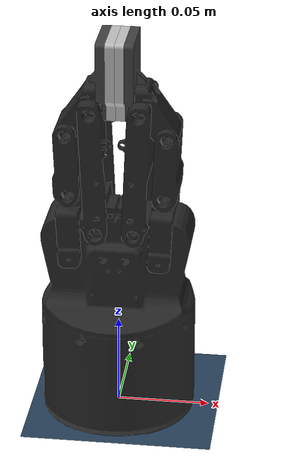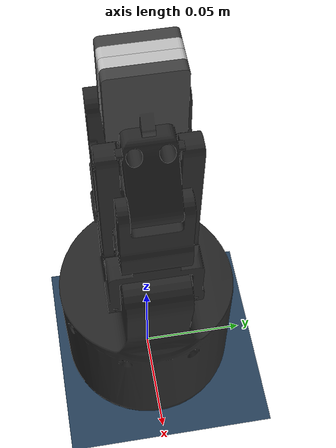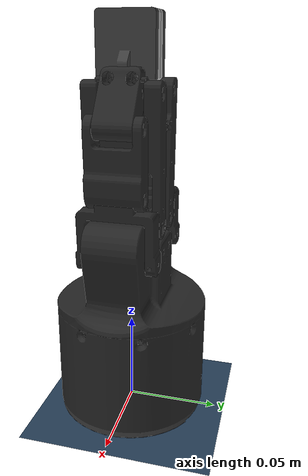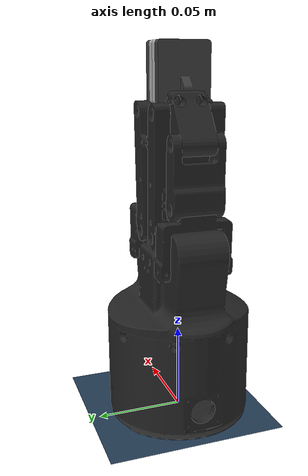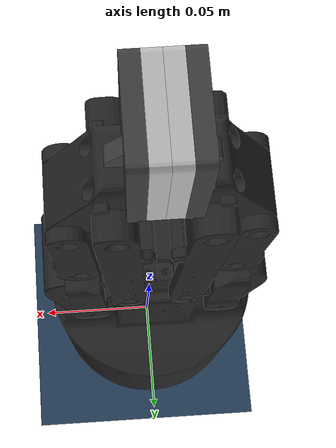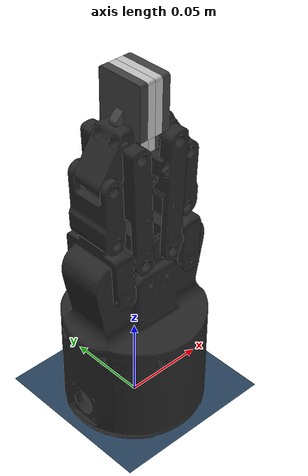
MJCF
<mujoco model="eg01_P5_5_sw2urdf scene">
  <include file="eg01p5_5_mjmodel.xml"/>

  <!-- Add some fluid viscosity to prevent the hanging box from jiggling forever -->
  <option viscosity="0.5"/>

  <statistic center="0 0 0.05" extent="0.3"/>

  <visual>
    <headlight diffuse="0.6 0.6 0.6" ambient="0.3 0.3 0.3" specular="0 0 0"/>
    <rgba haze="0.15 0.25 0.35 1"/>
    <global azimuth="60" elevation="-20"/>
  </visual>

  <asset>
    <texture type="skybox" builtin="gradient" rgb1="0.3 0.5 0.7" rgb2="0 0 0" width="512" height="3072"/>
    <texture type="2d" name="groundplane" builtin="checker" mark="edge" rgb1="0.2 0.3 0.4" rgb2="0.1 0.2 0.3"
      markrgb="0.8 0.8 0.8" width="300" height="300"/>
    <material name="groundplane" texture="groundplane" texuniform="true" texrepeat="5 5" reflectance="0.2"/>
  </asset>

  <worldbody>
    <light pos="0 0 1"/>
    <light pos="0 -0.2 1" dir="0 0.2 -0.8" directional="true"/>
    <geom name="floor" size="0 0 0.05" type="plane" material="groundplane"/>

  </worldbody>

</mujoco>

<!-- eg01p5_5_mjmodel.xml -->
<mujoco model="eg01_p5_5_sw2urdf">
  <compiler angle="radian" meshdir="..\meshes" autolimits="true"/>

  <option cone="elliptic" impratio="10"/>

  <asset>
    <material name="metal" rgba="0.58 0.58 0.58 1"/>
    <material name="silicone" rgba="0.1882 0.1882 0.1882 1"/>
    <material name="gray" rgba="0.4627 0.4627 0.4627 1"/>
    <material name="black" rgba="0.149 0.149 0.149 1"/>

    <mesh name="base_link" file="base_link.STL"/>
    <mesh name="Left_L1" file="Left_L1.STL"/>
    <mesh name="Left_L2" file="Left_L2.STL"/>
    <mesh name="Left_L3" file="Left_L3.STL"/>
    <mesh name="Left_finger_plate" file="Left_finger_plate.STL"/>
    <mesh name="Left_finger_rubber" file="Left_finger_rubber.STL"/>
    <mesh name="Left_L4" file="Left_L4.STL"/>
    <mesh name="Right_L1" file="Right_L1.STL"/>
    <mesh name="Right_L2" file="Right_L2.STL"/>
    <mesh name="Right_L3" file="Right_L3.STL"/>
    <mesh name="Right_finger_plate" file="Right_finger_plate.STL"/>
    <mesh name="Right_finger_rubber" file="Right_finger_rubber.STL"/>
    <mesh name="Right_L4" file="Right_L4.STL"/>
  </asset>

  <default>
    <default class="eg01">
      <mesh scale="0.001 0.001 0.001"/>
      <general biastype="affine"/>

      <default class="L1_J1">
        <joint range="-0.1 2.32" armature="0.005" damping="0.01" solimplimit="0.95 0.99 0.001" solreflimit="0.005 1"/>
      </default>
      <default class="L2_J2">
        <joint range="-1.8 0.0" armature="0.001" damping="0.01" solimplimit="0.95 0.99 0.001" solreflimit="0.005 1" stiffness="0.5" springref="0.2"/>
      </default>
      <default class="L3_J3">
        <joint range="-1.5 0.75" armature="0.001" damping="0.1" solimplimit="0.95 0.99 0.001" solreflimit="0.005 1"/>
      </default>
      <default class="L4_J4">
        <joint range="-0.1 1.4" armature="0.001" damping="0.1" solimplimit="0.95 0.99 0.001" solreflimit="0.005 1" stiffness="20" springref="0.7"/>
      </default>

      <default class="visual">
        <geom type="mesh" contype="0" conaffinity="0" group="2"/>
      </default>

      <default class="collision">
        <geom type="mesh" group="3"/>
      </default>
    </default>
  </default>

  <worldbody>
    <body name="base_link" pos="0 0 0" childclass="eg01">
      <geom class="visual" mesh="base_link" material="black"/>
      <geom class="collision" mesh="base_link"/>

      <body name="Left_L1" pos="-0.024 0 0.0957" quat="0.999762 0 -0.0218326 0">
        <inertial pos="1.43904e-07 -3.34855e-09 0.0211388" quat="0.707107 0.707107 0.000433452 -0.000433452" mass="0.020296" diaginertia="6.30267e-06 3.87088e-06 2.92634e-06"/>
        <joint name="Left_J1" pos="0 0 0" axis="0 -1 0" class="L1_J1"/>
        <geom class="visual" mesh="Left_L1" material="black"/>
        <geom class="collision" mesh="Left_L1"/>

        <body name="Left_L2" pos="0 0 0.034">
          <inertial pos="-0.000647192 -2.92504e-09 0.0156751" quat="0.706829 0.706825 0.0198903 -0.0198901" mass="0.0233775" diaginertia="4.19732e-06 2.50182e-06 2.33741e-06"/>
          <joint name="Left_J2" pos="0 0 0" axis="0 -1 0" class="L2_J2"/>
          <geom class="visual" mesh="Left_L2" material="black"/>
          <geom class="collision" mesh="Left_L2"/>

          <body name="Left_L3" pos="0 0 0.034" quat="0.922094 0 0.386967 0">
            <inertial pos="-0.0044967 -6.88183e-11 0.025979" quat="0.986589 0 -0.163225 0" mass="0.0444524" diaginertia="1.51863e-05 1.40838e-05 3.48548e-06"/>
            <joint name="Left_J3" pos="0 0 0" axis="0 -1 0" class="L3_J3"/>
            <geom class="visual" mesh="Left_L3" material="black"/>
            <geom class="collision" mesh="Left_L3"/>

            <body name="Left_finger_plate">
              <geom pos="0.000145846 0 0.0247601" quat="0.281788 -0.648533 -0.648533 0.281788" type="mesh" contype="0" conaffinity="0" group="1" density="0" rgba="0.25098 0.25098 0.25098 1" mesh="Left_finger_plate"/>
              <geom pos="0.000145846 0 0.0247601" quat="0.281788 -0.648533 -0.648533 0.281788" type="mesh" rgba="0.25098 0.25098 0.25098 0.5" class="collision" mesh="Left_finger_plate" friction="1.0"/>
                <body name="Left_finger_rubber">
                  <geom pos="0.000145846 0 0.0247601" quat="0.281788 -0.648533 -0.648533 0.281788" type="mesh" contype="0" conaffinity="0" group="1" density="0" rgba="0.752941 0.752941 0.752941 1" mesh="Left_finger_rubber"/>
                  <geom pos="0.000145846 0 0.0247601" quat="0.281788 -0.648533 -0.648533 0.281788" type="mesh" rgba="0.752941 0.752941 0.752941 1" class="collision" mesh="Left_finger_rubber" friction="1.0"/>
                </body>
            </body>
          </body>
        </body>
      </body>

      <body name="Left_L4" pos="-0.01 0 0.1107" quat="0.999762 0 -0.0218149 0">
        <inertial pos="-0.000775167 1.18348e-09 0.0401951" quat="1 0 -0.000433959 0" mass="0.0414352" diaginertia="2.23144e-05 1.394e-05 9.29223e-06"/>
        <joint name="Left_J4" pos="0 0 0" axis="0 -1 0" class="L4_J4"/>
        <geom class="visual" mesh="Left_L4" material="black"/>
        <geom class="collision" mesh="Left_L4"/>
      </body>

      <body name="Right_L1" pos="0.024 0 0.0957" quat="0 -0.0218326 0 -0.999762">
        <inertial pos="9.39041e-08 -3.34855e-09 0.0211388" quat="0.707107 0.707107 0.000433452 -0.000433452" mass="0.020296" diaginertia="6.30267e-06 3.87088e-06 2.92634e-06"/>
        <joint name="Right_J1" pos="0 0 0" axis="0 -1 0" class="L1_J1"/>
        <geom class="visual" mesh="Right_L1" material="black"/>
        <geom class="collision" mesh="Right_L1"/>

        <body name="Right_L2" pos="0 0 0.034">
          <inertial pos="-0.000647192 -2.92504e-09 0.0156751" quat="0.706829 0.706825 0.0198903 -0.0198901" mass="0.0233775" diaginertia="4.19732e-06 2.50182e-06 2.33741e-06"/>
          <joint name="Right_J2" pos="0 0 0" axis="0 -1 0" class="L2_J2"/>
          <geom class="visual" mesh="Right_L2" material="black"/>
          <geom class="collision" mesh="Right_L2"/>

          <body name="Right_L3" pos="0 0 0.034" quat="0.922094 0 0.386967 0">
            <inertial pos="-0.0044967 -6.88171e-11 0.025979" quat="0.986589 0 -0.163226 0" mass="0.0444524" diaginertia="1.51863e-05 1.40838e-05 3.48549e-06"/>
            <joint name="Right_J3" pos="0 0 0" axis="0 -1 0" class="L3_J3"/>
            <geom class="visual" mesh="Right_L3" material="black"/>
            <geom class="collision" mesh="Right_L3"/>

            <body name="Right_finger_plate">
              <geom pos="0.000145846 0 0.0247601" quat="0.648533 0.28179 0.28179 0.648533" type="mesh" contype="0" conaffinity="0" group="1" density="0" rgba="0.25098 0.25098 0.25098 1" mesh="Right_finger_plate"/>
              <geom pos="0.000145846 0 0.0247601" quat="0.648533 0.28179 0.28179 0.648533" type="mesh" rgba="0.25098 0.25098 0.25098 1" class="collision" mesh="Right_finger_plate" friction="1.0"/>
                <body name="Right_finger_rubber">
                  <geom pos="0.0111108 0 0.0349958" quat="0.648533 -0.28179 0.28179 -0.648533" type="mesh" contype="0" conaffinity="0" group="1" density="0" rgba="0.752941 0.752941 0.752941 1" mesh="Right_finger_rubber"/>
                  <geom pos="0.0111108 0 0.0349958" quat="0.648533 -0.28179 0.28179 -0.648533" type="mesh" rgba="0.752941 0.752941 0.752941 1" class="collision" mesh="Right_finger_rubber" friction="1.0"/>
                </body>
            </body>
          </body>
        </body>
      </body>
      <body name="Right_L4" pos="0.01 0 0.1107" quat="0 -0.0218149 0 -0.999762">
        <inertial pos="-0.000775167 1.18348e-09 0.0401951" quat="1 0 -0.000433959 0" mass="0.0414352" diaginertia="2.23144e-05 1.394e-05 9.29223e-06"/>
        <joint name="Right_J4" pos="0 0 0" axis="0 -1 0" class="L4_J4"/>
        <geom class="visual" mesh="Right_L4" material="black"/>
        <geom class="collision" mesh="Right_L4"/>
      </body>
    </body>
  </worldbody>

  <contact>
    <exclude body1="base_link" body2="Left_L1"/>
    <exclude body1="base_link" body2="Left_L4"/>
    <exclude body1="base_link" body2="Right_L1"/>
    <exclude body1="base_link" body2="Right_L4"/>

    <exclude body1="Left_L1" body2="Left_L2"/>
    <exclude body1="Right_L1" body2="Right_L2"/>

    <exclude body1="Left_L2" body2="Left_L3"/>
    <exclude body1="Right_L2" body2="Right_L3"/>

    <exclude body1="Left_L3" body2="Left_L4"/>
    <exclude body1="Right_L3" body2="Right_L4"/>

    <exclude body1="Left_L4" body2="Left_L1"/>
    <exclude body1="Right_L4" body2="Right_L1"/>
    <exclude body1="Left_L4" body2="Left_L2"/>
    <exclude body1="Right_L4" body2="Right_L2"/>

    <exclude body1="Left_finger_plate" body2="Left_L4"/>
    <exclude body1="Right_finger_plate" body2="Right_L4"/>

    <exclude body1="Left_finger_rubber" body2="Left_L4"/>
    <exclude body1="Right_finger_rubber" body2="Right_L4"/>
  </contact>

  <tendon>
    <fixed name="LnR_J1_split">
      <joint joint="Left_J1" coef="0.5"/>
      <joint joint="Right_J1" coef="0.5"/>
    </fixed>
  </tendon>

  <equality>
    <connect anchor="0 0 0.068" body1="Left_L4" body2="Left_L3" solimp="0.95 0.99 0.001" solref="0.005 1"/>
    <connect anchor="0 0 0.068" body1="Right_L4" body2="Right_L3" solimp="0.95 0.99 0.001" solref="0.005 1"/>
  </equality>
  <!-- use equility to connect L4 and L3 bodies to form a close chain, anchor point is (0,0,0.068) on body1
       which is the upper shaft center of L4 (L4 length is 68mm)-->

  <actuator>
    <general class="eg01" name="L1J1_actuator" tendon="LnR_J1_split" forcerange="-50 50" ctrlrange="-40 40"
      gainprm="0.8 0 0" biasprm="0 0 -10"/>
  </actuator>
</mujoco>
